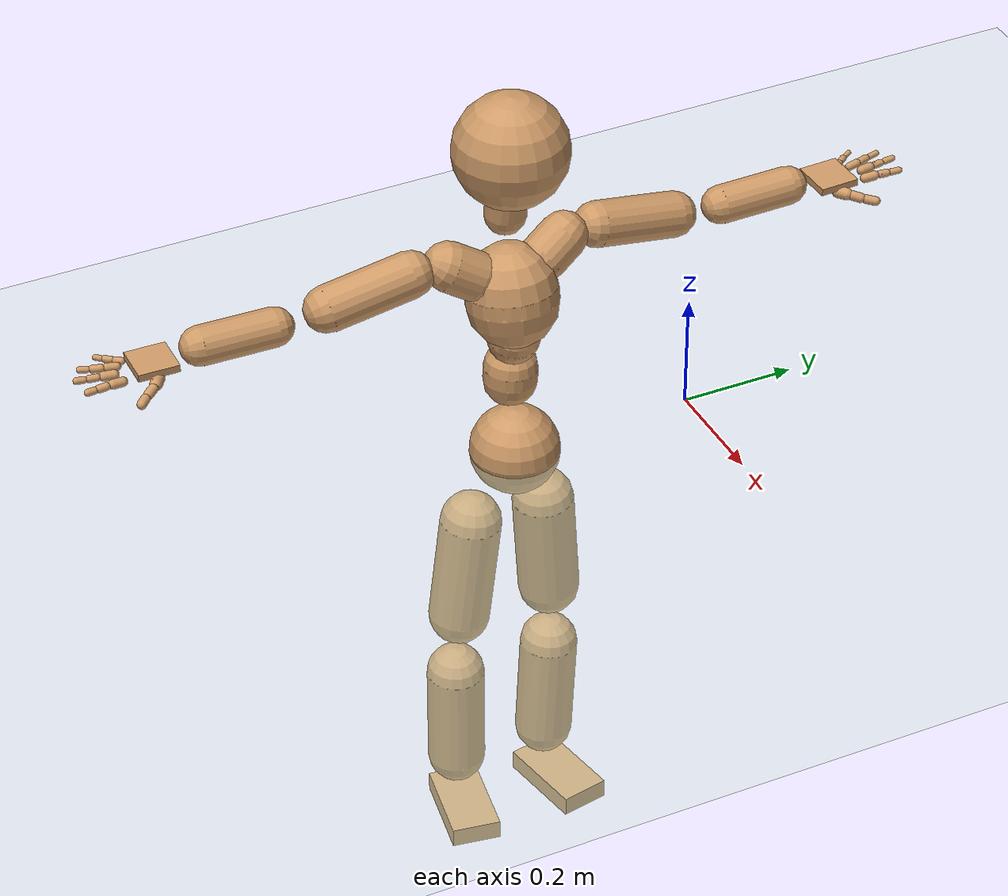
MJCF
<mujoco model="humanoid">
  <compiler coordinate="local" angle="radian"/>
  <default>
    <joint damping="0.0" armature="0.01" stiffness="0.0" limited="true"/>
    <geom conaffinity="1" condim="3" contype="7" margin="0.001" rgba="0.8 0.6 .4 1"/>
  </default>
  <asset>
    <texture type="skybox" builtin="gradient" rgb1=".4 .5 .6" rgb2="0 0 0" width="100" height="100"/>
    <texture builtin="flat" height="1278" mark="cross" markrgb="1 1 1" name="texgeom" random="0.01" rgb1="0.8 0.6 0.4" rgb2="0.8 0.6 0.4" type="cube" width="127"/>
    <texture builtin="checker" height="100" name="texplane" rgb1="0 0 0" rgb2="0.8 0.8 0.8" type="2d" width="100"/>
    <material name="MatPlane" reflectance="0.5" shininess="1" specular="1" texrepeat="60 60" texture="texplane"/>
    <material name="geom" texture="texgeom" texuniform="true"/>
  </asset>
  <worldbody>
    <light cutoff="100" diffuse="1 1 1" dir="-0 0 -1.3" directional="true" exponent="1" pos="0 0 1.3" specular=".1 .1 .1"/>
    <geom conaffinity="1" condim="3" name="floor" pos="0 0 0" rgba="0.8 0.9 0.8 1" size="100 100 .2" type="plane" material="MatPlane"/>
    <body name="Pelvis" pos="0.0005 -0.3207 0.0048">
      <freejoint name="Pelvis"/>
      <geom type="sphere" contype="1" conaffinity="1" density="500" size="0.0768" pos="0.0000 0.0000 0.0000" name="Pelvis"/>
      <body name="L_Hip" pos="-0.0261 0.0613 -0.0788">
        <joint name="L_Hip_x" type="hinge" pos="0 0 0" axis="1 0 0" stiffness="800" damping="80" armature="0.02" range="-180.0000 180.0000"/>
        <joint name="L_Hip_y" type="hinge" pos="0 0 0" axis="0 1 0" stiffness="800" damping="80" armature="0.02" range="-180.0000 180.0000"/>
        <joint name="L_Hip_z" type="hinge" pos="0 0 0" axis="0 0 1" stiffness="800" damping="80" armature="0.02" range="-180.0000 180.0000"/>
        <geom type="capsule" contype="1" conaffinity="1" density="500" fromto="-0.0036 0.0059 -0.0677 -0.0143 0.0237 -0.2707" size="0.0529" name="L_Hip"/>
        <body name="L_Knee" pos="-0.0178 0.0296 -0.3384">
          <joint name="L_Knee_x" type="hinge" pos="0 0 0" axis="1 0 0" stiffness="800" damping="80" armature="0.02" range="-180.0000 180.0000"/>
          <joint name="L_Knee_y" type="hinge" pos="0 0 0" axis="0 1 0" stiffness="800" damping="80" armature="0.02" range="-180.0000 180.0000"/>
          <joint name="L_Knee_z" type="hinge" pos="0 0 0" axis="0 0 1" stiffness="800" damping="80" armature="0.02" range="-180.0000 180.0000"/>
          <geom type="capsule" contype="1" conaffinity="1" density="500" fromto="-0.0026 -0.0017 -0.0664 -0.0105 -0.0069 -0.2656" size="0.0501" name="L_Knee"/>
          <body name="L_Ankle" pos="-0.0131 -0.0086 -0.332">
            <joint name="L_Ankle_x" type="hinge" pos="0 0 0" axis="1 0 0" stiffness="800" damping="80" armature="0.02" range="-180.0000 180.0000"/>
            <joint name="L_Ankle_y" type="hinge" pos="0 0 0" axis="0 1 0" stiffness="800" damping="80" armature="0.02" range="-180.0000 180.0000"/>
            <joint name="L_Ankle_z" type="hinge" pos="0 0 0" axis="0 0 1" stiffness="800" damping="80" armature="0.02" range="-180.0000 180.0000"/>
            <geom type="box" contype="1" conaffinity="1" density="500" pos="0.0497 0.0094 -0.0199" size="0.0785 0.0427 0.0176" quat="0.9956 0.0000 0.0000 0.0934" name="L_Ankle"/>
            <body name="L_Toe" pos="0.0994 0.0188 -0.0398">
              <joint name="L_Toe_x" type="hinge" pos="0 0 0" axis="1 0 0" stiffness="500" damping="50" armature="0.02" range="-180.0000 180.0000"/>
              <joint name="L_Toe_y" type="hinge" pos="0 0 0" axis="0 1 0" stiffness="500" damping="50" armature="0.02" range="-180.0000 180.0000"/>
              <joint name="L_Toe_z" type="hinge" pos="0 0 0" axis="0 0 1" stiffness="500" damping="50" armature="0.02" range="-180.0000 180.0000"/>
              <geom type="box" contype="1" conaffinity="1" density="500" pos="0.0000 0.0000 0.0213" size="0.0009 0.0021 0.001" quat="0.9949 0.0000 0.0000 0.1010" name="L_Toe"/>
            </body>
          </body>
        </body>
      </body>
      <body name="R_Hip" pos="-0.0274 -0.0607 -0.0857">
        <joint name="R_Hip_x" type="hinge" pos="0 0 0" axis="1 0 0" stiffness="800" damping="80" armature="0.02" range="-180.0000 180.0000"/>
        <joint name="R_Hip_y" type="hinge" pos="0 0 0" axis="0 1 0" stiffness="800" damping="80" armature="0.02" range="-180.0000 180.0000"/>
        <joint name="R_Hip_z" type="hinge" pos="0 0 0" axis="0 0 1" stiffness="800" damping="80" armature="0.02" range="-180.0000 180.0000"/>
        <geom type="capsule" contype="1" conaffinity="1" density="500" fromto="-0.0025 -0.0066 -0.0667 -0.0099 -0.0265 -0.2667" size="0.0528" name="R_Hip"/>
        <body name="R_Knee" pos="-0.0124 -0.0332 -0.3334">
          <joint name="R_Knee_x" type="hinge" pos="0 0 0" axis="1 0 0" stiffness="800" damping="80" armature="0.02" range="-180.0000 180.0000"/>
          <joint name="R_Knee_y" type="hinge" pos="0 0 0" axis="0 1 0" stiffness="800" damping="80" armature="0.02" range="-180.0000 180.0000"/>
          <joint name="R_Knee_z" type="hinge" pos="0 0 0" axis="0 0 1" stiffness="800" damping="80" armature="0.02" range="-180.0000 180.0000"/>
          <geom type="capsule" contype="1" conaffinity="1" density="500" fromto="-0.0018 0.0010 -0.0649 -0.0071 0.0038 -0.2594" size="0.0501" name="R_Knee"/>
          <body name="R_Ankle" pos="-0.0088 0.0048 -0.3243">
            <joint name="R_Ankle_x" type="hinge" pos="0 0 0" axis="1 0 0" stiffness="800" damping="80" armature="0.02" range="-180.0000 180.0000"/>
            <joint name="R_Ankle_y" type="hinge" pos="0 0 0" axis="0 1 0" stiffness="800" damping="80" armature="0.02" range="-180.0000 180.0000"/>
            <joint name="R_Ankle_z" type="hinge" pos="0 0 0" axis="0 0 1" stiffness="800" damping="80" armature="0.02" range="-180.0000 180.0000"/>
            <geom type="box" contype="1" conaffinity="1" density="500" pos="0.0464 -0.0076 -0.0217" size="0.0785 0.0427 0.0176" quat="0.9967 0.0000 0.0000 -0.0810" name="R_Ankle"/>
            <body name="R_Toe" pos="0.0929 -0.0152 -0.0434">
              <joint name="R_Toe_x" type="hinge" pos="0 0 0" axis="1 0 0" stiffness="500" damping="50" armature="0.02" range="-180.0000 180.0000"/>
              <joint name="R_Toe_y" type="hinge" pos="0 0 0" axis="0 1 0" stiffness="500" damping="50" armature="0.02" range="-180.0000 180.0000"/>
              <joint name="R_Toe_z" type="hinge" pos="0 0 0" axis="0 0 1" stiffness="500" damping="50" armature="0.02" range="-180.0000 180.0000"/>
              <geom type="box" contype="1" conaffinity="1" density="500" pos="0.0000 0.0000 0.0231" size="0.0009 0.0021 0.001" quat="0.9976 0.0000 0.0000 -0.0690" name="R_Toe"/>
            </body>
          </body>
        </body>
      </body>
      <body name="Torso" pos="-0.0142 -0.004 0.0872">
        <joint name="Torso_x" type="hinge" pos="0 0 0" axis="1 0 0" stiffness="1000" damping="100" armature="0.02" range="-180.0000 180.0000"/>
        <joint name="Torso_y" type="hinge" pos="0 0 0" axis="0 1 0" stiffness="1000" damping="100" armature="0.02" range="-180.0000 180.0000"/>
        <joint name="Torso_z" type="hinge" pos="0 0 0" axis="0 0 1" stiffness="1000" damping="100" armature="0.02" range="-180.0000 180.0000"/>
        <geom type="capsule" contype="1" conaffinity="1" density="500" fromto="-0.0010 0.0035 0.0697 -0.0006 0.0023 0.0464" size="0.0458" name="Torso"/>
        <body name="Spine" pos="-0.0016 0.0059 0.1161">
          <joint name="Spine_x" type="hinge" pos="0 0 0" axis="1 0 0" stiffness="1000" damping="100" armature="0.02" range="-180.0000 180.0000"/>
          <joint name="Spine_y" type="hinge" pos="0 0 0" axis="0 1 0" stiffness="1000" damping="100" armature="0.02" range="-180.0000 180.0000"/>
          <joint name="Spine_z" type="hinge" pos="0 0 0" axis="0 0 1" stiffness="1000" damping="100" armature="0.02" range="-180.0000 180.0000"/>
          <geom type="capsule" contype="1" conaffinity="1" density="500" fromto="0.0122 -0.0019 0.0239 0.0081 -0.0013 0.0159" size="0.0439" name="Spine"/>
          <body name="Chest" pos="0.0203 -0.0032 0.0398">
            <joint name="Chest_x" type="hinge" pos="0 0 0" axis="1 0 0" stiffness="1000" damping="100" armature="0.02" range="-180.0000 180.0000"/>
            <joint name="Chest_y" type="hinge" pos="0 0 0" axis="0 1 0" stiffness="1000" damping="100" armature="0.02" range="-180.0000 180.0000"/>
            <joint name="Chest_z" type="hinge" pos="0 0 0" axis="0 0 1" stiffness="1000" damping="100" armature="0.02" range="-180.0000 180.0000"/>
            <geom type="capsule" contype="1" conaffinity="1" density="500" fromto="-0.0136 -0.0013 0.0761 -0.0091 -0.0009 0.0507" size="0.0772" name="Chest"/>
            <body name="Neck" pos="-0.0338 -0.0047 0.1774">
              <joint name="Neck_x" type="hinge" pos="0 0 0" axis="1 0 0" stiffness="500" damping="50" armature="0.02" range="-180.0000 180.0000"/>
              <joint name="Neck_y" type="hinge" pos="0 0 0" axis="0 1 0" stiffness="500" damping="50" armature="0.02" range="-180.0000 180.0000"/>
              <joint name="Neck_z" type="hinge" pos="0 0 0" axis="0 0 1" stiffness="500" damping="50" armature="0.02" range="-180.0000 180.0000"/>
              <geom type="capsule" contype="1" conaffinity="1" density="500" fromto="0.0018 0.0016 0.0305 0.0073 0.0063 0.1221" size="0.035" name="Neck"/>
              <body name="Head" pos="0.0092 0.0078 0.1527">
                <joint name="Head_x" type="hinge" pos="0 0 0" axis="1 0 0" stiffness="500" damping="50" armature="0.02" range="-180.0000 180.0000"/>
                <joint name="Head_y" type="hinge" pos="0 0 0" axis="0 1 0" stiffness="500" damping="50" armature="0.02" range="-180.0000 180.0000"/>
                <joint name="Head_z" type="hinge" pos="0 0 0" axis="0 0 1" stiffness="500" damping="50" armature="0.02" range="-180.0000 180.0000"/>
                <geom type="sphere" contype="1" conaffinity="1" density="500" size="0.0964" pos="0.0000 0.0000 0.0000" name="Head"/>
              </body>
            </body>
            <body name="L_Thorax" pos="-0.0151 0.0421 0.1033">
              <joint name="L_Thorax_x" type="hinge" pos="0 0 0" axis="1 0 0" stiffness="500" damping="50" armature="0.02" range="-180.0000 180.0000"/>
              <joint name="L_Thorax_y" type="hinge" pos="0 0 0" axis="0 1 0" stiffness="500" damping="50" armature="0.02" range="-180.0000 180.0000"/>
              <joint name="L_Thorax_z" type="hinge" pos="0 0 0" axis="0 0 1" stiffness="500" damping="50" armature="0.02" range="-180.0000 180.0000"/>
              <geom type="capsule" contype="1" conaffinity="1" density="500" fromto="-0.0037 0.0144 0.0086 -0.0147 0.0576 0.0344" size="0.0407" name="L_Thorax"/>
              <body name="L_Shoulder" pos="-0.0183 0.072 0.043">
                <joint name="L_Shoulder_x" type="hinge" pos="0 0 0" axis="1 0 0" stiffness="500" damping="50" armature="0.02" range="-180.0000 180.0000"/>
                <joint name="L_Shoulder_y" type="hinge" pos="0 0 0" axis="0 1 0" stiffness="500" damping="50" armature="0.02" range="-180.0000 180.0000"/>
                <joint name="L_Shoulder_z" type="hinge" pos="0 0 0" axis="0 0 1" stiffness="500" damping="50" armature="0.02" range="-180.0000 180.0000"/>
                <geom type="capsule" contype="1" conaffinity="1" density="500" fromto="-0.0040 0.0490 -0.0103 -0.0161 0.1962 -0.0411" size="0.0389" name="L_Shoulder"/>
                <body name="L_Elbow" pos="-0.0201 0.2452 -0.0514">
                  <joint name="L_Elbow_x" type="hinge" pos="0 0 0" axis="1 0 0" stiffness="500" damping="50" armature="0.02" range="-720.0000 720.0000"/>
                  <joint name="L_Elbow_y" type="hinge" pos="0 0 0" axis="0 1 0" stiffness="500" damping="50" armature="0.02" range="-720.0000 720.0000"/>
                  <joint name="L_Elbow_z" type="hinge" pos="0 0 0" axis="0 0 1" stiffness="500" damping="50" armature="0.02" range="-720.0000 720.0000"/>
                  <geom type="capsule" contype="1" conaffinity="1" density="500" fromto="0.0004 0.0417 0.0009 0.0016 0.1667 0.0037" size="0.0325" name="L_Elbow"/>
                  <body name="L_Wrist" pos="0.002 0.2084 0.0046">
                    <joint name="L_Wrist_x" type="hinge" pos="0 0 0" axis="1 0 0" stiffness="300" damping="30" armature="0.02" range="-180.0000 180.0000"/>
                    <joint name="L_Wrist_y" type="hinge" pos="0 0 0" axis="0 1 0" stiffness="300" damping="30" armature="0.02" range="-180.0000 180.0000"/>
                    <joint name="L_Wrist_z" type="hinge" pos="0 0 0" axis="0 0 1" stiffness="300" damping="30" armature="0.02" range="-180.0000 180.0000"/>
                    <geom type="box" contype="1" conaffinity="1" density="500" pos="-0.0015 0.0380 -0.0080" size="0.0346 0.0363 0.0062" quat="0.7206 0.0000 0.0000 -0.6933" name="L_Wrist"/>
                    <body name="L_Index1" pos="0.0191 0.0898 -0.0146">
                      <joint name="L_Index1_x" type="hinge" pos="0 0 0" axis="1 0 0" stiffness="100" damping="10" armature="0.02" range="-180.0000 180.0000"/>
                      <joint name="L_Index1_y" type="hinge" pos="0 0 0" axis="0 1 0" stiffness="100" damping="10" armature="0.02" range="-180.0000 180.0000"/>
                      <joint name="L_Index1_z" type="hinge" pos="0 0 0" axis="0 0 1" stiffness="100" damping="10" armature="0.02" range="-180.0000 180.0000"/>
                      <geom type="capsule" contype="1" conaffinity="1" density="500" fromto="0.0005 0.0059 0.0004 0.0021 0.0235 0.0017" size="0.008" name="L_Index1"/>
                      <body name="L_Index2" pos="0.0027 0.0294 0.0021">
                        <joint name="L_Index2_x" type="hinge" pos="0 0 0" axis="1 0 0" stiffness="100" damping="10" armature="0.02" range="-180.0000 180.0000"/>
                        <joint name="L_Index2_y" type="hinge" pos="0 0 0" axis="0 1 0" stiffness="100" damping="10" armature="0.02" range="-180.0000 180.0000"/>
                        <joint name="L_Index2_z" type="hinge" pos="0 0 0" axis="0 0 1" stiffness="100" damping="10" armature="0.02" range="-180.0000 180.0000"/>
                        <geom type="capsule" contype="1" conaffinity="1" density="500" fromto="0.0001 0.0042 -0.0003 0.0003 0.0168 -0.0011" size="0.0067" name="L_Index2"/>
                        <body name="L_Index3" pos="0.0004 0.0209 -0.0014">
                          <joint name="L_Index3_x" type="hinge" pos="0 0 0" axis="1 0 0" stiffness="100" damping="10" armature="0.02" range="-180.0000 180.0000"/>
                          <joint name="L_Index3_y" type="hinge" pos="0 0 0" axis="0 1 0" stiffness="100" damping="10" armature="0.02" range="-180.0000 180.0000"/>
                          <joint name="L_Index3_z" type="hinge" pos="0 0 0" axis="0 0 1" stiffness="100" damping="10" armature="0.02" range="-180.0000 180.0000"/>
                          <geom type="capsule" contype="1" conaffinity="1" density="500" fromto="0.0005 0.0046 0.0001 0.0019 0.0184 0.0005" size="0.0057" name="L_Index3"/>
                        </body>
                      </body>
                    </body>
                    <body name="L_Middle1" pos="-0.0009 0.0959 -0.0128">
                      <joint name="L_Middle1_x" type="hinge" pos="0 0 0" axis="1 0 0" stiffness="100" damping="10" armature="0.02" range="-180.0000 180.0000"/>
                      <joint name="L_Middle1_y" type="hinge" pos="0 0 0" axis="0 1 0" stiffness="100" damping="10" armature="0.02" range="-180.0000 180.0000"/>
                      <joint name="L_Middle1_z" type="hinge" pos="0 0 0" axis="0 0 1" stiffness="100" damping="10" armature="0.02" range="-180.0000 180.0000"/>
                      <geom type="capsule" contype="1" conaffinity="1" density="500" fromto="-0.0007 0.0056 0.0002 -0.0029 0.0223 0.0007" size="0.0081" name="L_Middle1"/>
                      <body name="L_Middle2" pos="-0.0036 0.0278 0.0009">
                        <joint name="L_Middle2_x" type="hinge" pos="0 0 0" axis="1 0 0" stiffness="100" damping="10" armature="0.02" range="-180.0000 180.0000"/>
                        <joint name="L_Middle2_y" type="hinge" pos="0 0 0" axis="0 1 0" stiffness="100" damping="10" armature="0.02" range="-180.0000 180.0000"/>
                        <joint name="L_Middle2_z" type="hinge" pos="0 0 0" axis="0 0 1" stiffness="100" damping="10" armature="0.02" range="-180.0000 180.0000"/>
                        <geom type="capsule" contype="1" conaffinity="1" density="500" fromto="-0.0007 0.0043 -0.0001 -0.0028 0.0174 -0.0003" size="0.0062" name="L_Middle2"/>
                        <body name="L_Middle3" pos="-0.0035 0.0217 -0.0004">
                          <joint name="L_Middle3_x" type="hinge" pos="0 0 0" axis="1 0 0" stiffness="100" damping="10" armature="0.02" range="-180.0000 180.0000"/>
                          <joint name="L_Middle3_y" type="hinge" pos="0 0 0" axis="0 1 0" stiffness="100" damping="10" armature="0.02" range="-180.0000 180.0000"/>
                          <joint name="L_Middle3_z" type="hinge" pos="0 0 0" axis="0 0 1" stiffness="100" damping="10" armature="0.02" range="-180.0000 180.0000"/>
                          <geom type="capsule" contype="1" conaffinity="1" density="500" fromto="-0.0003 0.0047 0.0003 -0.0012 0.0190 0.0013" size="0.0055" name="L_Middle3"/>
                        </body>
                      </body>
                    </body>
                    <body name="L_Pinky1" pos="-0.0357 0.0728 -0.0184">
                      <joint name="L_Pinky1_x" type="hinge" pos="0 0 0" axis="1 0 0" stiffness="100" damping="10" armature="0.02" range="-180.0000 180.0000"/>
                      <joint name="L_Pinky1_y" type="hinge" pos="0 0 0" axis="0 1 0" stiffness="100" damping="10" armature="0.02" range="-180.0000 180.0000"/>
                      <joint name="L_Pinky1_z" type="hinge" pos="0 0 0" axis="0 0 1" stiffness="100" damping="10" armature="0.02" range="-180.0000 180.0000"/>
                      <geom type="capsule" contype="1" conaffinity="1" density="500" fromto="-0.0022 0.0027 -0.0000 -0.0088 0.0107 -0.0002" size="0.006" name="L_Pinky1"/>
                      <body name="L_Pinky2" pos="-0.0111 0.0134 -0.0002">
                        <joint name="L_Pinky2_x" type="hinge" pos="0 0 0" axis="1 0 0" stiffness="100" damping="10" armature="0.02" range="-180.0000 180.0000"/>
                        <joint name="L_Pinky2_y" type="hinge" pos="0 0 0" axis="0 1 0" stiffness="100" damping="10" armature="0.02" range="-180.0000 180.0000"/>
                        <joint name="L_Pinky2_z" type="hinge" pos="0 0 0" axis="0 0 1" stiffness="100" damping="10" armature="0.02" range="-180.0000 180.0000"/>
                        <geom type="capsule" contype="1" conaffinity="1" density="500" fromto="-0.0022 0.0028 -0.0001 -0.0088 0.0111 -0.0005" size="0.0058" name="L_Pinky2"/>
                        <body name="L_Pinky3" pos="-0.011 0.0138 -0.0006">
                          <joint name="L_Pinky3_x" type="hinge" pos="0 0 0" axis="1 0 0" stiffness="100" damping="10" armature="0.02" range="-180.0000 180.0000"/>
                          <joint name="L_Pinky3_y" type="hinge" pos="0 0 0" axis="0 1 0" stiffness="100" damping="10" armature="0.02" range="-180.0000 180.0000"/>
                          <joint name="L_Pinky3_z" type="hinge" pos="0 0 0" axis="0 0 1" stiffness="100" damping="10" armature="0.02" range="-180.0000 180.0000"/>
                          <geom type="capsule" contype="1" conaffinity="1" density="500" fromto="-0.0018 0.0032 0.0003 -0.0072 0.0127 0.0011" size="0.0046" name="L_Pinky3"/>
                        </body>
                      </body>
                    </body>
                    <body name="L_Ring1" pos="-0.0211 0.0848 -0.0144">
                      <joint name="L_Ring1_x" type="hinge" pos="0 0 0" axis="1 0 0" stiffness="100" damping="10" armature="0.02" range="-180.0000 180.0000"/>
                      <joint name="L_Ring1_y" type="hinge" pos="0 0 0" axis="0 1 0" stiffness="100" damping="10" armature="0.02" range="-180.0000 180.0000"/>
                      <joint name="L_Ring1_z" type="hinge" pos="0 0 0" axis="0 0 1" stiffness="100" damping="10" armature="0.02" range="-180.0000 180.0000"/>
                      <geom type="capsule" contype="1" conaffinity="1" density="500" fromto="-0.0010 0.0050 0.0003 -0.0039 0.0202 0.0013" size="0.0071" name="L_Ring1"/>
                      <body name="L_Ring2" pos="-0.0048 0.0252 0.0016">
                        <joint name="L_Ring2_x" type="hinge" pos="0 0 0" axis="1 0 0" stiffness="100" damping="10" armature="0.02" range="-180.0000 180.0000"/>
                        <joint name="L_Ring2_y" type="hinge" pos="0 0 0" axis="0 1 0" stiffness="100" damping="10" armature="0.02" range="-180.0000 180.0000"/>
                        <joint name="L_Ring2_z" type="hinge" pos="0 0 0" axis="0 0 1" stiffness="100" damping="10" armature="0.02" range="-180.0000 180.0000"/>
                        <geom type="capsule" contype="1" conaffinity="1" density="500" fromto="-0.0013 0.0042 -0.0001 -0.0053 0.0167 -0.0005" size="0.0066" name="L_Ring2"/>
                        <body name="L_Ring3" pos="-0.0066 0.0209 -0.0007">
                          <joint name="L_Ring3_x" type="hinge" pos="0 0 0" axis="1 0 0" stiffness="100" damping="10" armature="0.02" range="-180.0000 180.0000"/>
                          <joint name="L_Ring3_y" type="hinge" pos="0 0 0" axis="0 1 0" stiffness="100" damping="10" armature="0.02" range="-180.0000 180.0000"/>
                          <joint name="L_Ring3_z" type="hinge" pos="0 0 0" axis="0 0 1" stiffness="100" damping="10" armature="0.02" range="-180.0000 180.0000"/>
                          <geom type="capsule" contype="1" conaffinity="1" density="500" fromto="-0.0009 0.0046 0.0003 -0.0037 0.0183 0.0011" size="0.0052" name="L_Ring3"/>
                        </body>
                      </body>
                    </body>
                    <body name="L_Thumb1" pos="0.0239 0.0368 -0.0201">
                      <joint name="L_Thumb1_x" type="hinge" pos="0 0 0" axis="1 0 0" stiffness="100" damping="10" armature="0.02" range="-180.0000 180.0000"/>
                      <joint name="L_Thumb1_y" type="hinge" pos="0 0 0" axis="0 1 0" stiffness="100" damping="10" armature="0.02" range="-180.0000 180.0000"/>
                      <joint name="L_Thumb1_z" type="hinge" pos="0 0 0" axis="0 0 1" stiffness="100" damping="10" armature="0.02" range="-180.0000 180.0000"/>
                      <geom type="capsule" contype="1" conaffinity="1" density="500" fromto="0.0043 0.0032 0.0001 0.0173 0.0126 0.0004" size="0.0104" name="L_Thumb1"/>
                      <body name="L_Thumb2" pos="0.0216 0.0158 0.0005">
                        <joint name="L_Thumb2_x" type="hinge" pos="0 0 0" axis="1 0 0" stiffness="100" damping="10" armature="0.02" range="-180.0000 180.0000"/>
                        <joint name="L_Thumb2_y" type="hinge" pos="0 0 0" axis="0 1 0" stiffness="100" damping="10" armature="0.02" range="-180.0000 180.0000"/>
                        <joint name="L_Thumb2_z" type="hinge" pos="0 0 0" axis="0 0 1" stiffness="100" damping="10" armature="0.02" range="-180.0000 180.0000"/>
                        <geom type="capsule" contype="1" conaffinity="1" density="500" fromto="0.0026 0.0038 -0.0010 0.0105 0.0151 -0.0042" size="0.0083" name="L_Thumb2"/>
                        <body name="L_Thumb3" pos="0.0131 0.0189 -0.0052">
                          <joint name="L_Thumb3_x" type="hinge" pos="0 0 0" axis="1 0 0" stiffness="100" damping="10" armature="0.02" range="-180.0000 180.0000"/>
                          <joint name="L_Thumb3_y" type="hinge" pos="0 0 0" axis="0 1 0" stiffness="100" damping="10" armature="0.02" range="-180.0000 180.0000"/>
                          <joint name="L_Thumb3_z" type="hinge" pos="0 0 0" axis="0 0 1" stiffness="100" damping="10" armature="0.02" range="-180.0000 180.0000"/>
                          <geom type="capsule" contype="1" conaffinity="1" density="500" fromto="0.0030 0.0042 -0.0006 0.0121 0.0167 -0.0026" size="0.0077" name="L_Thumb3"/>
                        </body>
                      </body>
                    </body>
                  </body>
                </body>
              </body>
            </body>
            <body name="R_Thorax" pos="-0.0191 -0.0438 0.0997">
              <joint name="R_Thorax_x" type="hinge" pos="0 0 0" axis="1 0 0" stiffness="500" damping="50" armature="0.02" range="-180.0000 180.0000"/>
              <joint name="R_Thorax_y" type="hinge" pos="0 0 0" axis="0 1 0" stiffness="500" damping="50" armature="0.02" range="-180.0000 180.0000"/>
              <joint name="R_Thorax_z" type="hinge" pos="0 0 0" axis="0 0 1" stiffness="500" damping="50" armature="0.02" range="-180.0000 180.0000"/>
              <geom type="capsule" contype="1" conaffinity="1" density="500" fromto="-0.0028 -0.0154 0.0094 -0.0113 -0.0615 0.0375" size="0.0416" name="R_Thorax"/>
              <body name="R_Shoulder" pos="-0.0142 -0.0769 0.0469">
                <joint name="R_Shoulder_x" type="hinge" pos="0 0 0" axis="1 0 0" stiffness="500" damping="50" armature="0.02" range="-180.0000 180.0000"/>
                <joint name="R_Shoulder_y" type="hinge" pos="0 0 0" axis="0 1 0" stiffness="500" damping="50" armature="0.02" range="-180.0000 180.0000"/>
                <joint name="R_Shoulder_z" type="hinge" pos="0 0 0" axis="0 0 1" stiffness="500" damping="50" armature="0.02" range="-180.0000 180.0000"/>
                <geom type="capsule" contype="1" conaffinity="1" density="500" fromto="-0.0028 -0.0473 -0.0096 -0.0111 -0.1893 -0.0386" size="0.0392" name="R_Shoulder"/>
                <body name="R_Elbow" pos="-0.0139 -0.2366 -0.0482">
                  <joint name="R_Elbow_x" type="hinge" pos="0 0 0" axis="1 0 0" stiffness="500" damping="50" armature="0.02" range="-720.0000 720.0000"/>
                  <joint name="R_Elbow_y" type="hinge" pos="0 0 0" axis="0 1 0" stiffness="500" damping="50" armature="0.02" range="-720.0000 720.0000"/>
                  <joint name="R_Elbow_z" type="hinge" pos="0 0 0" axis="0 0 1" stiffness="500" damping="50" armature="0.02" range="-720.0000 720.0000"/>
                  <geom type="capsule" contype="1" conaffinity="1" density="500" fromto="-0.0011 -0.0419 0.0001 -0.0043 -0.1677 0.0004" size="0.0327" name="R_Elbow"/>
                  <body name="R_Wrist" pos="-0.0054 -0.2096 0.0005">
                    <joint name="R_Wrist_x" type="hinge" pos="0 0 0" axis="1 0 0" stiffness="300" damping="30" armature="0.02" range="-180.0000 180.0000"/>
                    <joint name="R_Wrist_y" type="hinge" pos="0 0 0" axis="0 1 0" stiffness="300" damping="30" armature="0.02" range="-180.0000 180.0000"/>
                    <joint name="R_Wrist_z" type="hinge" pos="0 0 0" axis="0 0 1" stiffness="300" damping="30" armature="0.02" range="-180.0000 180.0000"/>
                    <geom type="box" contype="1" conaffinity="1" density="500" pos="-0.0009 -0.0375 -0.0077" size="0.0346 0.0342 0.0064" quat="0.7159 0.0000 0.0000 0.6982" name="R_Wrist"/>
                    <body name="R_Index1" pos="0.0201 -0.0888 -0.0139">
                      <joint name="R_Index1_x" type="hinge" pos="0 0 0" axis="1 0 0" stiffness="100" damping="10" armature="0.02" range="-180.0000 180.0000"/>
                      <joint name="R_Index1_y" type="hinge" pos="0 0 0" axis="0 1 0" stiffness="100" damping="10" armature="0.02" range="-180.0000 180.0000"/>
                      <joint name="R_Index1_z" type="hinge" pos="0 0 0" axis="0 0 1" stiffness="100" damping="10" armature="0.02" range="-180.0000 180.0000"/>
                      <geom type="capsule" contype="1" conaffinity="1" density="500" fromto="0.0005 -0.0059 0.0004 0.0021 -0.0235 0.0017" size="0.008" name="R_Index1"/>
                      <body name="R_Index2" pos="0.0027 -0.0294 0.0021">
                        <joint name="R_Index2_x" type="hinge" pos="0 0 0" axis="1 0 0" stiffness="100" damping="10" armature="0.02" range="-180.0000 180.0000"/>
                        <joint name="R_Index2_y" type="hinge" pos="0 0 0" axis="0 1 0" stiffness="100" damping="10" armature="0.02" range="-180.0000 180.0000"/>
                        <joint name="R_Index2_z" type="hinge" pos="0 0 0" axis="0 0 1" stiffness="100" damping="10" armature="0.02" range="-180.0000 180.0000"/>
                        <geom type="capsule" contype="1" conaffinity="1" density="500" fromto="0.0001 -0.0042 -0.0003 0.0003 -0.0168 -0.0011" size="0.0067" name="R_Index2"/>
                        <body name="R_Index3" pos="0.0004 -0.0209 -0.0014">
                          <joint name="R_Index3_x" type="hinge" pos="0 0 0" axis="1 0 0" stiffness="100" damping="10" armature="0.02" range="-180.0000 180.0000"/>
                          <joint name="R_Index3_y" type="hinge" pos="0 0 0" axis="0 1 0" stiffness="100" damping="10" armature="0.02" range="-180.0000 180.0000"/>
                          <joint name="R_Index3_z" type="hinge" pos="0 0 0" axis="0 0 1" stiffness="100" damping="10" armature="0.02" range="-180.0000 180.0000"/>
                          <geom type="capsule" contype="1" conaffinity="1" density="500" fromto="0.0005 -0.0038 0.0001 0.0019 -0.0152 0.0005" size="0.006" name="R_Index3"/>
                        </body>
                      </body>
                    </body>
                    <body name="R_Middle1" pos="0.0001 -0.095 -0.0121">
                      <joint name="R_Middle1_x" type="hinge" pos="0 0 0" axis="1 0 0" stiffness="100" damping="10" armature="0.02" range="-180.0000 180.0000"/>
                      <joint name="R_Middle1_y" type="hinge" pos="0 0 0" axis="0 1 0" stiffness="100" damping="10" armature="0.02" range="-180.0000 180.0000"/>
                      <joint name="R_Middle1_z" type="hinge" pos="0 0 0" axis="0 0 1" stiffness="100" damping="10" armature="0.02" range="-180.0000 180.0000"/>
                      <geom type="capsule" contype="1" conaffinity="1" density="500" fromto="-0.0007 -0.0056 0.0002 -0.0029 -0.0223 0.0007" size="0.0081" name="R_Middle1"/>
                      <body name="R_Middle2" pos="-0.0036 -0.0278 0.0009">
                        <joint name="R_Middle2_x" type="hinge" pos="0 0 0" axis="1 0 0" stiffness="100" damping="10" armature="0.02" range="-180.0000 180.0000"/>
                        <joint name="R_Middle2_y" type="hinge" pos="0 0 0" axis="0 1 0" stiffness="100" damping="10" armature="0.02" range="-180.0000 180.0000"/>
                        <joint name="R_Middle2_z" type="hinge" pos="0 0 0" axis="0 0 1" stiffness="100" damping="10" armature="0.02" range="-180.0000 180.0000"/>
                        <geom type="capsule" contype="1" conaffinity="1" density="500" fromto="-0.0007 -0.0043 -0.0001 -0.0028 -0.0174 -0.0003" size="0.0062" name="R_Middle2"/>
                        <body name="R_Middle3" pos="-0.0035 -0.0217 -0.0004">
                          <joint name="R_Middle3_x" type="hinge" pos="0 0 0" axis="1 0 0" stiffness="100" damping="10" armature="0.02" range="-180.0000 180.0000"/>
                          <joint name="R_Middle3_y" type="hinge" pos="0 0 0" axis="0 1 0" stiffness="100" damping="10" armature="0.02" range="-180.0000 180.0000"/>
                          <joint name="R_Middle3_z" type="hinge" pos="0 0 0" axis="0 0 1" stiffness="100" damping="10" armature="0.02" range="-180.0000 180.0000"/>
                          <geom type="capsule" contype="1" conaffinity="1" density="500" fromto="-0.0003 -0.0039 0.0003 -0.0012 -0.0158 0.0013" size="0.0058" name="R_Middle3"/>
                        </body>
                      </body>
                    </body>
                    <body name="R_Pinky1" pos="-0.0346 -0.0719 -0.0177">
                      <joint name="R_Pinky1_x" type="hinge" pos="0 0 0" axis="1 0 0" stiffness="100" damping="10" armature="0.02" range="-180.0000 180.0000"/>
                      <joint name="R_Pinky1_y" type="hinge" pos="0 0 0" axis="0 1 0" stiffness="100" damping="10" armature="0.02" range="-180.0000 180.0000"/>
                      <joint name="R_Pinky1_z" type="hinge" pos="0 0 0" axis="0 0 1" stiffness="100" damping="10" armature="0.02" range="-180.0000 180.0000"/>
                      <geom type="capsule" contype="1" conaffinity="1" density="500" fromto="-0.0022 -0.0027 -0.0000 -0.0088 -0.0107 -0.0002" size="0.006" name="R_Pinky1"/>
                      <body name="R_Pinky2" pos="-0.0111 -0.0134 -0.0002">
                        <joint name="R_Pinky2_x" type="hinge" pos="0 0 0" axis="1 0 0" stiffness="100" damping="10" armature="0.02" range="-180.0000 180.0000"/>
                        <joint name="R_Pinky2_y" type="hinge" pos="0 0 0" axis="0 1 0" stiffness="100" damping="10" armature="0.02" range="-180.0000 180.0000"/>
                        <joint name="R_Pinky2_z" type="hinge" pos="0 0 0" axis="0 0 1" stiffness="100" damping="10" armature="0.02" range="-180.0000 180.0000"/>
                        <geom type="capsule" contype="1" conaffinity="1" density="500" fromto="-0.0022 -0.0028 -0.0001 -0.0088 -0.0111 -0.0005" size="0.0058" name="R_Pinky2"/>
                        <body name="R_Pinky3" pos="-0.011 -0.0138 -0.0006">
                          <joint name="R_Pinky3_x" type="hinge" pos="0 0 0" axis="1 0 0" stiffness="100" damping="10" armature="0.02" range="-180.0000 180.0000"/>
                          <joint name="R_Pinky3_y" type="hinge" pos="0 0 0" axis="0 1 0" stiffness="100" damping="10" armature="0.02" range="-180.0000 180.0000"/>
                          <joint name="R_Pinky3_z" type="hinge" pos="0 0 0" axis="0 0 1" stiffness="100" damping="10" armature="0.02" range="-180.0000 180.0000"/>
                          <geom type="capsule" contype="1" conaffinity="1" density="500" fromto="-0.0018 -0.0024 0.0003 -0.0072 -0.0095 0.0011" size="0.0048" name="R_Pinky3"/>
                        </body>
                      </body>
                    </body>
                    <body name="R_Ring1" pos="-0.02 -0.0839 -0.0137">
                      <joint name="R_Ring1_x" type="hinge" pos="0 0 0" axis="1 0 0" stiffness="100" damping="10" armature="0.02" range="-180.0000 180.0000"/>
                      <joint name="R_Ring1_y" type="hinge" pos="0 0 0" axis="0 1 0" stiffness="100" damping="10" armature="0.02" range="-180.0000 180.0000"/>
                      <joint name="R_Ring1_z" type="hinge" pos="0 0 0" axis="0 0 1" stiffness="100" damping="10" armature="0.02" range="-180.0000 180.0000"/>
                      <geom type="capsule" contype="1" conaffinity="1" density="500" fromto="-0.0010 -0.0050 0.0003 -0.0039 -0.0202 0.0013" size="0.0071" name="R_Ring1"/>
                      <body name="R_Ring2" pos="-0.0048 -0.0252 0.0016">
                        <joint name="R_Ring2_x" type="hinge" pos="0 0 0" axis="1 0 0" stiffness="100" damping="10" armature="0.02" range="-180.0000 180.0000"/>
                        <joint name="R_Ring2_y" type="hinge" pos="0 0 0" axis="0 1 0" stiffness="100" damping="10" armature="0.02" range="-180.0000 180.0000"/>
                        <joint name="R_Ring2_z" type="hinge" pos="0 0 0" axis="0 0 1" stiffness="100" damping="10" armature="0.02" range="-180.0000 180.0000"/>
                        <geom type="capsule" contype="1" conaffinity="1" density="500" fromto="-0.0013 -0.0042 -0.0001 -0.0053 -0.0167 -0.0005" size="0.0066" name="R_Ring2"/>
                        <body name="R_Ring3" pos="-0.0066 -0.0209 -0.0007">
                          <joint name="R_Ring3_x" type="hinge" pos="0 0 0" axis="1 0 0" stiffness="100" damping="10" armature="0.02" range="-180.0000 180.0000"/>
                          <joint name="R_Ring3_y" type="hinge" pos="0 0 0" axis="0 1 0" stiffness="100" damping="10" armature="0.02" range="-180.0000 180.0000"/>
                          <joint name="R_Ring3_z" type="hinge" pos="0 0 0" axis="0 0 1" stiffness="100" damping="10" armature="0.02" range="-180.0000 180.0000"/>
                          <geom type="capsule" contype="1" conaffinity="1" density="500" fromto="-0.0009 -0.0038 0.0003 -0.0037 -0.0151 0.0011" size="0.0055" name="R_Ring3"/>
                        </body>
                      </body>
                    </body>
                    <body name="R_Thumb1" pos="0.025 -0.0359 -0.0194">
                      <joint name="R_Thumb1_x" type="hinge" pos="0 0 0" axis="1 0 0" stiffness="100" damping="10" armature="0.02" range="-180.0000 180.0000"/>
                      <joint name="R_Thumb1_y" type="hinge" pos="0 0 0" axis="0 1 0" stiffness="100" damping="10" armature="0.02" range="-180.0000 180.0000"/>
                      <joint name="R_Thumb1_z" type="hinge" pos="0 0 0" axis="0 0 1" stiffness="100" damping="10" armature="0.02" range="-180.0000 180.0000"/>
                      <geom type="capsule" contype="1" conaffinity="1" density="500" fromto="0.0043 -0.0032 0.0001 0.0173 -0.0126 0.0004" size="0.0104" name="R_Thumb1"/>
                      <body name="R_Thumb2" pos="0.0216 -0.0158 0.0005">
                        <joint name="R_Thumb2_x" type="hinge" pos="0 0 0" axis="1 0 0" stiffness="100" damping="10" armature="0.02" range="-180.0000 180.0000"/>
                        <joint name="R_Thumb2_y" type="hinge" pos="0 0 0" axis="0 1 0" stiffness="100" damping="10" armature="0.02" range="-180.0000 180.0000"/>
                        <joint name="R_Thumb2_z" type="hinge" pos="0 0 0" axis="0 0 1" stiffness="100" damping="10" armature="0.02" range="-180.0000 180.0000"/>
                        <geom type="capsule" contype="1" conaffinity="1" density="500" fromto="0.0026 -0.0038 -0.0010 0.0105 -0.0151 -0.0042" size="0.0083" name="R_Thumb2"/>
                        <body name="R_Thumb3" pos="0.0131 -0.0189 -0.0052">
                          <joint name="R_Thumb3_x" type="hinge" pos="0 0 0" axis="1 0 0" stiffness="100" damping="10" armature="0.02" range="-180.0000 180.0000"/>
                          <joint name="R_Thumb3_y" type="hinge" pos="0 0 0" axis="0 1 0" stiffness="100" damping="10" armature="0.02" range="-180.0000 180.0000"/>
                          <joint name="R_Thumb3_z" type="hinge" pos="0 0 0" axis="0 0 1" stiffness="100" damping="10" armature="0.02" range="-180.0000 180.0000"/>
                          <geom type="capsule" contype="1" conaffinity="1" density="500" fromto="0.0030 -0.0034 -0.0006 0.0121 -0.0135 -0.0026" size="0.008" name="R_Thumb3"/>
                        </body>
                      </body>
                    </body>
                  </body>
                </body>
              </body>
            </body>
          </body>
        </body>
      </body>
    </body>
  </worldbody>
  <actuator>
    <motor name="L_Hip_x" joint="L_Hip_x" gear="500"/>
    <motor name="L_Hip_y" joint="L_Hip_y" gear="500"/>
    <motor name="L_Hip_z" joint="L_Hip_z" gear="500"/>
    <motor name="L_Knee_x" joint="L_Knee_x" gear="500"/>
    <motor name="L_Knee_y" joint="L_Knee_y" gear="500"/>
    <motor name="L_Knee_z" joint="L_Knee_z" gear="500"/>
    <motor name="L_Ankle_x" joint="L_Ankle_x" gear="500"/>
    <motor name="L_Ankle_y" joint="L_Ankle_y" gear="500"/>
    <motor name="L_Ankle_z" joint="L_Ankle_z" gear="500"/>
    <motor name="L_Toe_x" joint="L_Toe_x" gear="500"/>
    <motor name="L_Toe_y" joint="L_Toe_y" gear="500"/>
    <motor name="L_Toe_z" joint="L_Toe_z" gear="500"/>
    <motor name="R_Hip_x" joint="R_Hip_x" gear="500"/>
    <motor name="R_Hip_y" joint="R_Hip_y" gear="500"/>
    <motor name="R_Hip_z" joint="R_Hip_z" gear="500"/>
    <motor name="R_Knee_x" joint="R_Knee_x" gear="500"/>
    <motor name="R_Knee_y" joint="R_Knee_y" gear="500"/>
    <motor name="R_Knee_z" joint="R_Knee_z" gear="500"/>
    <motor name="R_Ankle_x" joint="R_Ankle_x" gear="500"/>
    <motor name="R_Ankle_y" joint="R_Ankle_y" gear="500"/>
    <motor name="R_Ankle_z" joint="R_Ankle_z" gear="500"/>
    <motor name="R_Toe_x" joint="R_Toe_x" gear="500"/>
    <motor name="R_Toe_y" joint="R_Toe_y" gear="500"/>
    <motor name="R_Toe_z" joint="R_Toe_z" gear="500"/>
    <motor name="Torso_x" joint="Torso_x" gear="500"/>
    <motor name="Torso_y" joint="Torso_y" gear="500"/>
    <motor name="Torso_z" joint="Torso_z" gear="500"/>
    <motor name="Spine_x" joint="Spine_x" gear="500"/>
    <motor name="Spine_y" joint="Spine_y" gear="500"/>
    <motor name="Spine_z" joint="Spine_z" gear="500"/>
    <motor name="Chest_x" joint="Chest_x" gear="500"/>
    <motor name="Chest_y" joint="Chest_y" gear="500"/>
    <motor name="Chest_z" joint="Chest_z" gear="500"/>
    <motor name="Neck_x" joint="Neck_x" gear="500"/>
    <motor name="Neck_y" joint="Neck_y" gear="500"/>
    <motor name="Neck_z" joint="Neck_z" gear="500"/>
    <motor name="Head_x" joint="Head_x" gear="500"/>
    <motor name="Head_y" joint="Head_y" gear="500"/>
    <motor name="Head_z" joint="Head_z" gear="500"/>
    <motor name="L_Thorax_x" joint="L_Thorax_x" gear="500"/>
    <motor name="L_Thorax_y" joint="L_Thorax_y" gear="500"/>
    <motor name="L_Thorax_z" joint="L_Thorax_z" gear="500"/>
    <motor name="L_Shoulder_x" joint="L_Shoulder_x" gear="500"/>
    <motor name="L_Shoulder_y" joint="L_Shoulder_y" gear="500"/>
    <motor name="L_Shoulder_z" joint="L_Shoulder_z" gear="500"/>
    <motor name="L_Elbow_x" joint="L_Elbow_x" gear="500"/>
    <motor name="L_Elbow_y" joint="L_Elbow_y" gear="500"/>
    <motor name="L_Elbow_z" joint="L_Elbow_z" gear="500"/>
    <motor name="L_Wrist_x" joint="L_Wrist_x" gear="500"/>
    <motor name="L_Wrist_y" joint="L_Wrist_y" gear="500"/>
    <motor name="L_Wrist_z" joint="L_Wrist_z" gear="500"/>
    <motor name="L_Index1_x" joint="L_Index1_x" gear="500"/>
    <motor name="L_Index1_y" joint="L_Index1_y" gear="500"/>
    <motor name="L_Index1_z" joint="L_Index1_z" gear="500"/>
    <motor name="L_Index2_x" joint="L_Index2_x" gear="500"/>
    <motor name="L_Index2_y" joint="L_Index2_y" gear="500"/>
    <motor name="L_Index2_z" joint="L_Index2_z" gear="500"/>
    <motor name="L_Index3_x" joint="L_Index3_x" gear="500"/>
    <motor name="L_Index3_y" joint="L_Index3_y" gear="500"/>
    <motor name="L_Index3_z" joint="L_Index3_z" gear="500"/>
    <motor name="L_Middle1_x" joint="L_Middle1_x" gear="500"/>
    <motor name="L_Middle1_y" joint="L_Middle1_y" gear="500"/>
    <motor name="L_Middle1_z" joint="L_Middle1_z" gear="500"/>
    <motor name="L_Middle2_x" joint="L_Middle2_x" gear="500"/>
    <motor name="L_Middle2_y" joint="L_Middle2_y" gear="500"/>
    <motor name="L_Middle2_z" joint="L_Middle2_z" gear="500"/>
    <motor name="L_Middle3_x" joint="L_Middle3_x" gear="500"/>
    <motor name="L_Middle3_y" joint="L_Middle3_y" gear="500"/>
    <motor name="L_Middle3_z" joint="L_Middle3_z" gear="500"/>
    <motor name="L_Pinky1_x" joint="L_Pinky1_x" gear="500"/>
    <motor name="L_Pinky1_y" joint="L_Pinky1_y" gear="500"/>
    <motor name="L_Pinky1_z" joint="L_Pinky1_z" gear="500"/>
    <motor name="L_Pinky2_x" joint="L_Pinky2_x" gear="500"/>
    <motor name="L_Pinky2_y" joint="L_Pinky2_y" gear="500"/>
    <motor name="L_Pinky2_z" joint="L_Pinky2_z" gear="500"/>
    <motor name="L_Pinky3_x" joint="L_Pinky3_x" gear="500"/>
    <motor name="L_Pinky3_y" joint="L_Pinky3_y" gear="500"/>
    <motor name="L_Pinky3_z" joint="L_Pinky3_z" gear="500"/>
    <motor name="L_Ring1_x" joint="L_Ring1_x" gear="500"/>
    <motor name="L_Ring1_y" joint="L_Ring1_y" gear="500"/>
    <motor name="L_Ring1_z" joint="L_Ring1_z" gear="500"/>
    <motor name="L_Ring2_x" joint="L_Ring2_x" gear="500"/>
    <motor name="L_Ring2_y" joint="L_Ring2_y" gear="500"/>
    <motor name="L_Ring2_z" joint="L_Ring2_z" gear="500"/>
    <motor name="L_Ring3_x" joint="L_Ring3_x" gear="500"/>
    <motor name="L_Ring3_y" joint="L_Ring3_y" gear="500"/>
    <motor name="L_Ring3_z" joint="L_Ring3_z" gear="500"/>
    <motor name="L_Thumb1_x" joint="L_Thumb1_x" gear="500"/>
    <motor name="L_Thumb1_y" joint="L_Thumb1_y" gear="500"/>
    <motor name="L_Thumb1_z" joint="L_Thumb1_z" gear="500"/>
    <motor name="L_Thumb2_x" joint="L_Thumb2_x" gear="500"/>
    <motor name="L_Thumb2_y" joint="L_Thumb2_y" gear="500"/>
    <motor name="L_Thumb2_z" joint="L_Thumb2_z" gear="500"/>
    <motor name="L_Thumb3_x" joint="L_Thumb3_x" gear="500"/>
    <motor name="L_Thumb3_y" joint="L_Thumb3_y" gear="500"/>
    <motor name="L_Thumb3_z" joint="L_Thumb3_z" gear="500"/>
    <motor name="R_Thorax_x" joint="R_Thorax_x" gear="500"/>
    <motor name="R_Thorax_y" joint="R_Thorax_y" gear="500"/>
    <motor name="R_Thorax_z" joint="R_Thorax_z" gear="500"/>
    <motor name="R_Shoulder_x" joint="R_Shoulder_x" gear="500"/>
    <motor name="R_Shoulder_y" joint="R_Shoulder_y" gear="500"/>
    <motor name="R_Shoulder_z" joint="R_Shoulder_z" gear="500"/>
    <motor name="R_Elbow_x" joint="R_Elbow_x" gear="500"/>
    <motor name="R_Elbow_y" joint="R_Elbow_y" gear="500"/>
    <motor name="R_Elbow_z" joint="R_Elbow_z" gear="500"/>
    <motor name="R_Wrist_x" joint="R_Wrist_x" gear="500"/>
    <motor name="R_Wrist_y" joint="R_Wrist_y" gear="500"/>
    <motor name="R_Wrist_z" joint="R_Wrist_z" gear="500"/>
    <motor name="R_Index1_x" joint="R_Index1_x" gear="500"/>
    <motor name="R_Index1_y" joint="R_Index1_y" gear="500"/>
    <motor name="R_Index1_z" joint="R_Index1_z" gear="500"/>
    <motor name="R_Index2_x" joint="R_Index2_x" gear="500"/>
    <motor name="R_Index2_y" joint="R_Index2_y" gear="500"/>
    <motor name="R_Index2_z" joint="R_Index2_z" gear="500"/>
    <motor name="R_Index3_x" joint="R_Index3_x" gear="500"/>
    <motor name="R_Index3_y" joint="R_Index3_y" gear="500"/>
    <motor name="R_Index3_z" joint="R_Index3_z" gear="500"/>
    <motor name="R_Middle1_x" joint="R_Middle1_x" gear="500"/>
    <motor name="R_Middle1_y" joint="R_Middle1_y" gear="500"/>
    <motor name="R_Middle1_z" joint="R_Middle1_z" gear="500"/>
    <motor name="R_Middle2_x" joint="R_Middle2_x" gear="500"/>
    <motor name="R_Middle2_y" joint="R_Middle2_y" gear="500"/>
    <motor name="R_Middle2_z" joint="R_Middle2_z" gear="500"/>
    <motor name="R_Middle3_x" joint="R_Middle3_x" gear="500"/>
    <motor name="R_Middle3_y" joint="R_Middle3_y" gear="500"/>
    <motor name="R_Middle3_z" joint="R_Middle3_z" gear="500"/>
    <motor name="R_Pinky1_x" joint="R_Pinky1_x" gear="500"/>
    <motor name="R_Pinky1_y" joint="R_Pinky1_y" gear="500"/>
    <motor name="R_Pinky1_z" joint="R_Pinky1_z" gear="500"/>
    <motor name="R_Pinky2_x" joint="R_Pinky2_x" gear="500"/>
    <motor name="R_Pinky2_y" joint="R_Pinky2_y" gear="500"/>
    <motor name="R_Pinky2_z" joint="R_Pinky2_z" gear="500"/>
    <motor name="R_Pinky3_x" joint="R_Pinky3_x" gear="500"/>
    <motor name="R_Pinky3_y" joint="R_Pinky3_y" gear="500"/>
    <motor name="R_Pinky3_z" joint="R_Pinky3_z" gear="500"/>
    <motor name="R_Ring1_x" joint="R_Ring1_x" gear="500"/>
    <motor name="R_Ring1_y" joint="R_Ring1_y" gear="500"/>
    <motor name="R_Ring1_z" joint="R_Ring1_z" gear="500"/>
    <motor name="R_Ring2_x" joint="R_Ring2_x" gear="500"/>
    <motor name="R_Ring2_y" joint="R_Ring2_y" gear="500"/>
    <motor name="R_Ring2_z" joint="R_Ring2_z" gear="500"/>
    <motor name="R_Ring3_x" joint="R_Ring3_x" gear="500"/>
    <motor name="R_Ring3_y" joint="R_Ring3_y" gear="500"/>
    <motor name="R_Ring3_z" joint="R_Ring3_z" gear="500"/>
    <motor name="R_Thumb1_x" joint="R_Thumb1_x" gear="500"/>
    <motor name="R_Thumb1_y" joint="R_Thumb1_y" gear="500"/>
    <motor name="R_Thumb1_z" joint="R_Thumb1_z" gear="500"/>
    <motor name="R_Thumb2_x" joint="R_Thumb2_x" gear="500"/>
    <motor name="R_Thumb2_y" joint="R_Thumb2_y" gear="500"/>
    <motor name="R_Thumb2_z" joint="R_Thumb2_z" gear="500"/>
    <motor name="R_Thumb3_x" joint="R_Thumb3_x" gear="500"/>
    <motor name="R_Thumb3_y" joint="R_Thumb3_y" gear="500"/>
    <motor name="R_Thumb3_z" joint="R_Thumb3_z" gear="500"/>
  </actuator>
  <contact>
    <exclude body1="Torso" body2="Chest"/>
    <exclude body1="Head" body2="Chest"/>
    <exclude body1="R_Knee" body2="R_Toe"/>
    <exclude body1="R_Knee" body2="L_Ankle"/>
    <exclude body1="R_Knee" body2="L_Toe"/>
    <exclude body1="L_Knee" body2="L_Toe"/>
    <exclude body1="L_Knee" body2="R_Ankle"/>
    <exclude body1="L_Knee" body2="R_Toe"/>
    <exclude body1="L_Shoulder" body2="Chest"/>
    <exclude body1="R_Shoulder" body2="Chest"/>
  </contact>
  <sensor/>
  <size njmax="700" nconmax="700"/>
</mujoco>
